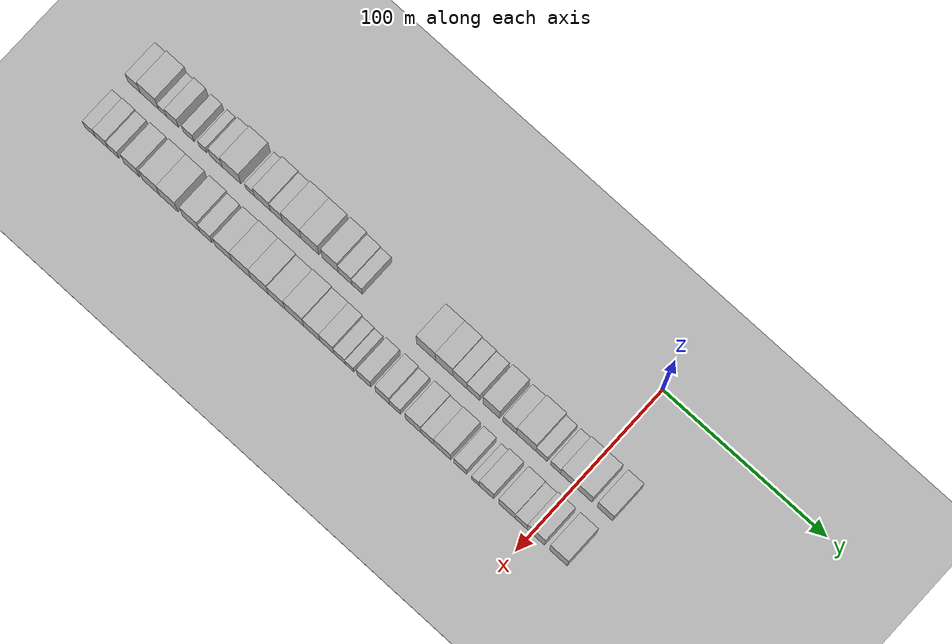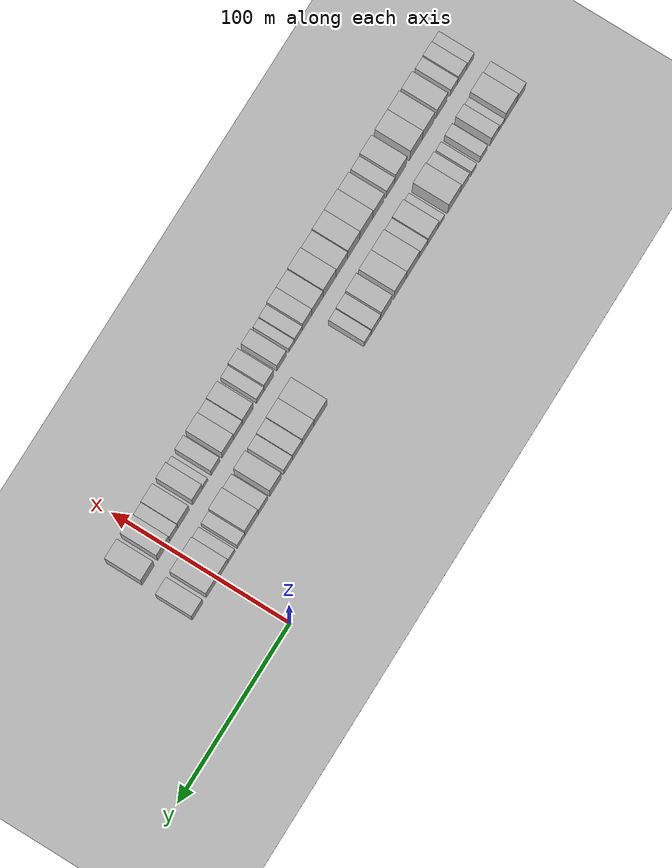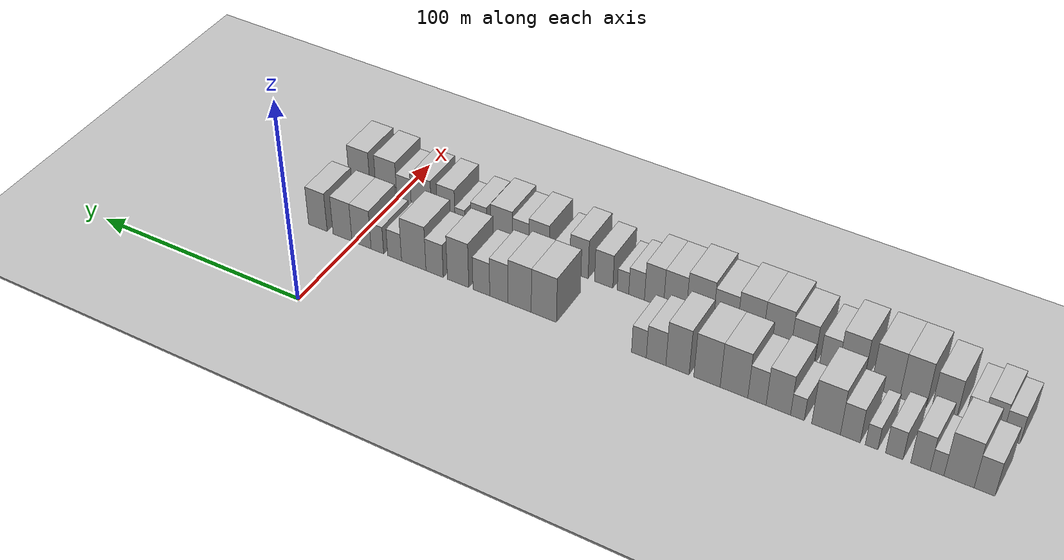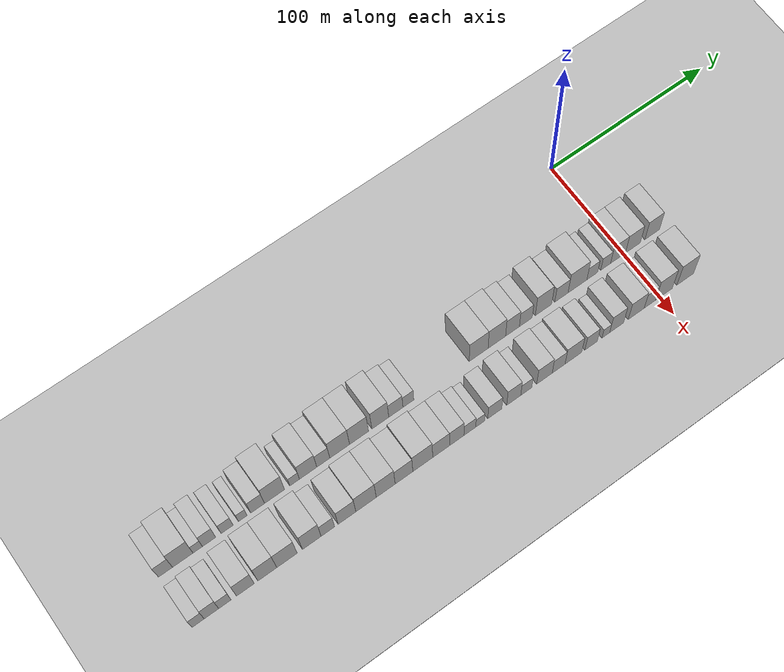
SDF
<sdf version="1.6">
 <world name="default">
  <include><name>ground_plane_1</name><uri>model://HANNAS_ground_plane</uri></include>
  <include>
   <name>ground_plane_2</name>
   <uri>model://HANNAS_ground_plane</uri>
   <pose>100 0 0  0 0 0</pose>
  </include>
  <model name="building_1">
   <static>1</static>
   <pose>50.0000 -274.0984 0 0.000000 0.000000 0.000000</pose>
   <link name="link">
    <pose>0 0 9.00 0 0 0</pose>
    <collision name="collision"><geometry><box><size>20.0000 7.8032 18.0000</size></box></geometry></collision>
    <visual name="visual">
     <cast_shadows>0</cast_shadows>
     <geometry><box><size>20.0000 7.8032 18.0000</size></box></geometry>
     <material>
      <script>
       <uri>model://HANNAS_wall/materials/scripts</uri>
       <uri>model://HANNAS_wall/materials/textures</uri>
       <name>vrc/HANNAS_wall</name>
      </script>
     </material>
    </visual>
   </link>
  </model>
  <model name="building_2">
   <static>1</static>
   <pose>50.0000 -264.4991 0 0.000000 0.000000 0.000000</pose>
   <link name="link">
    <pose>0 0 12.00 0 0 0</pose>
    <collision name="collision"><geometry><box><size>20.0000 11.3953 24.0000</size></box></geometry></collision>
    <visual name="visual">
     <cast_shadows>0</cast_shadows>
     <geometry><box><size>20.0000 11.3953 24.0000</size></box></geometry>
     <material>
      <script>
       <uri>model://HANNAS_wall/materials/scripts</uri>
       <uri>model://HANNAS_wall/materials/textures</uri>
       <name>vrc/HANNAS_wall</name>
      </script>
     </material>
    </visual>
   </link>
  </model>
  <model name="building_3">
   <static>1</static>
   <pose>50.0000 -256.1798 0 0.000000 0.000000 0.000000</pose>
   <link name="link">
    <pose>0 0 6.00 0 0 0</pose>
    <collision name="collision"><geometry><box><size>20.0000 5.2434 12.0000</size></box></geometry></collision>
    <visual name="visual">
     <cast_shadows>0</cast_shadows>
     <geometry><box><size>20.0000 5.2434 12.0000</size></box></geometry>
     <material>
      <script>
       <uri>model://HANNAS_wall/materials/scripts</uri>
       <uri>model://HANNAS_wall/materials/textures</uri>
       <name>vrc/HANNAS_wall</name>
      </script>
     </material>
    </visual>
   </link>
  </model>
  <model name="building_4">
   <static>1</static>
   <pose>50.0000 -249.8199 0 0.000000 0.000000 0.000000</pose>
   <link name="link">
    <pose>0 0 9.00 0 0 0</pose>
    <collision name="collision"><geometry><box><size>20.0000 7.4764 18.0000</size></box></geometry></collision>
    <visual name="visual">
     <cast_shadows>0</cast_shadows>
     <geometry><box><size>20.0000 7.4764 18.0000</size></box></geometry>
     <material>
      <script>
       <uri>model://HANNAS_wall/materials/scripts</uri>
       <uri>model://HANNAS_wall/materials/textures</uri>
       <name>vrc/HANNAS_wall</name>
      </script>
     </material>
    </visual>
   </link>
  </model>
  <model name="building_5">
   <static>1</static>
   <pose>50.0000 -239.6976 0 0.000000 0.000000 0.000000</pose>
   <link name="link">
    <pose>0 0 7.50 0 0 0</pose>
    <collision name="collision"><geometry><box><size>20.0000 6.7683 15.0000</size></box></geometry></collision>
    <visual name="visual">
     <cast_shadows>0</cast_shadows>
     <geometry><box><size>20.0000 6.7683 15.0000</size></box></geometry>
     <material>
      <script>
       <uri>model://HANNAS_wall/materials/scripts</uri>
       <uri>model://HANNAS_wall/materials/textures</uri>
       <name>vrc/HANNAS_wall</name>
      </script>
     </material>
    </visual>
   </link>
  </model>
  <model name="building_6">
   <static>1</static>
   <pose>50.0000 -230.8334 0 0.000000 0.000000 0.000000</pose>
   <link name="link">
    <pose>0 0 6.00 0 0 0</pose>
    <collision name="collision"><geometry><box><size>20.0000 4.9600 12.0000</size></box></geometry></collision>
    <visual name="visual">
     <cast_shadows>0</cast_shadows>
     <geometry><box><size>20.0000 4.9600 12.0000</size></box></geometry>
     <material>
      <script>
       <uri>model://HANNAS_wall/materials/scripts</uri>
       <uri>model://HANNAS_wall/materials/textures</uri>
       <name>vrc/HANNAS_wall</name>
      </script>
     </material>
    </visual>
   </link>
  </model>
  <model name="building_7">
   <static>1</static>
   <pose>50.0000 -222.4226 0 0.000000 0.000000 0.000000</pose>
   <link name="link">
    <pose>0 0 9.00 0 0 0</pose>
    <collision name="collision"><geometry><box><size>20.0000 7.8615 18.0000</size></box></geometry></collision>
    <visual name="visual">
     <cast_shadows>0</cast_shadows>
     <geometry><box><size>20.0000 7.8615 18.0000</size></box></geometry>
     <material>
      <script>
       <uri>model://HANNAS_wall/materials/scripts</uri>
       <uri>model://HANNAS_wall/materials/textures</uri>
       <name>vrc/HANNAS_wall</name>
      </script>
     </material>
    </visual>
   </link>
  </model>
  <model name="building_8">
   <static>1</static>
   <pose>50.0000 -212.7386 0 0.000000 0.000000 0.000000</pose>
   <link name="link">
    <pose>0 0 12.00 0 0 0</pose>
    <collision name="collision"><geometry><box><size>20.0000 11.5064 24.0000</size></box></geometry></collision>
    <visual name="visual">
     <cast_shadows>0</cast_shadows>
     <geometry><box><size>20.0000 11.5064 24.0000</size></box></geometry>
     <material>
      <script>
       <uri>model://HANNAS_wall/materials/scripts</uri>
       <uri>model://HANNAS_wall/materials/textures</uri>
       <name>vrc/HANNAS_wall</name>
      </script>
     </material>
    </visual>
   </link>
  </model>
  <model name="building_9">
   <static>1</static>
   <pose>50.0000 -201.2006 0 0.000000 0.000000 0.000000</pose>
   <link name="link">
    <pose>0 0 6.00 0 0 0</pose>
    <collision name="collision"><geometry><box><size>20.0000 5.5696 12.0000</size></box></geometry></collision>
    <visual name="visual">
     <cast_shadows>0</cast_shadows>
     <geometry><box><size>20.0000 5.5696 12.0000</size></box></geometry>
     <material>
      <script>
       <uri>model://HANNAS_wall/materials/scripts</uri>
       <uri>model://HANNAS_wall/materials/textures</uri>
       <name>vrc/HANNAS_wall</name>
      </script>
     </material>
    </visual>
   </link>
  </model>
  <model name="building_10">
   <static>1</static>
   <pose>50.0000 -193.3967 0 0.000000 0.000000 0.000000</pose>
   <link name="link">
    <pose>0 0 10.50 0 0 0</pose>
    <collision name="collision"><geometry><box><size>20.0000 10.0381 21.0000</size></box></geometry></collision>
    <visual name="visual">
     <cast_shadows>0</cast_shadows>
     <geometry><box><size>20.0000 10.0381 21.0000</size></box></geometry>
     <material>
      <script>
       <uri>model://HANNAS_wall/materials/scripts</uri>
       <uri>model://HANNAS_wall/materials/textures</uri>
       <name>vrc/HANNAS_wall</name>
      </script>
     </material>
    </visual>
   </link>
  </model>
  <model name="building_11">
   <static>1</static>
   <pose>50.0000 -184.5823 0 0.000000 0.000000 0.000000</pose>
   <link name="link">
    <pose>0 0 9.00 0 0 0</pose>
    <collision name="collision"><geometry><box><size>20.0000 7.5908 18.0000</size></box></geometry></collision>
    <visual name="visual">
     <cast_shadows>0</cast_shadows>
     <geometry><box><size>20.0000 7.5908 18.0000</size></box></geometry>
     <material>
      <script>
       <uri>model://HANNAS_wall/materials/scripts</uri>
       <uri>model://HANNAS_wall/materials/textures</uri>
       <name>vrc/HANNAS_wall</name>
      </script>
     </material>
    </visual>
   </link>
  </model>
  <model name="building_12">
   <static>1</static>
   <pose>50.0000 -175.0051 0 0.000000 0.000000 0.000000</pose>
   <link name="link">
    <pose>0 0 12.00 0 0 0</pose>
    <collision name="collision"><geometry><box><size>20.0000 11.5636 24.0000</size></box></geometry></collision>
    <visual name="visual">
     <cast_shadows>0</cast_shadows>
     <geometry><box><size>20.0000 11.5636 24.0000</size></box></geometry>
     <material>
      <script>
       <uri>model://HANNAS_wall/materials/scripts</uri>
       <uri>model://HANNAS_wall/materials/textures</uri>
       <name>vrc/HANNAS_wall</name>
      </script>
     </material>
    </visual>
   </link>
  </model>
  <model name="building_13">
   <static>1</static>
   <pose>50.0000 -163.6334 0 0.000000 0.000000 0.000000</pose>
   <link name="link">
    <pose>0 0 12.00 0 0 0</pose>
    <collision name="collision"><geometry><box><size>20.0000 11.1797 24.0000</size></box></geometry></collision>
    <visual name="visual">
     <cast_shadows>0</cast_shadows>
     <geometry><box><size>20.0000 11.1797 24.0000</size></box></geometry>
     <material>
      <script>
       <uri>model://HANNAS_wall/materials/scripts</uri>
       <uri>model://HANNAS_wall/materials/textures</uri>
       <name>vrc/HANNAS_wall</name>
      </script>
     </material>
    </visual>
   </link>
  </model>
  <model name="building_14">
   <static>1</static>
   <pose>50.0000 -151.0319 0 0.000000 0.000000 0.000000</pose>
   <link name="link">
    <pose>0 0 12.00 0 0 0</pose>
    <collision name="collision"><geometry><box><size>20.0000 10.0233 24.0000</size></box></geometry></collision>
    <visual name="visual">
     <cast_shadows>0</cast_shadows>
     <geometry><box><size>20.0000 10.0233 24.0000</size></box></geometry>
     <material>
      <script>
       <uri>model://HANNAS_wall/materials/scripts</uri>
       <uri>model://HANNAS_wall/materials/textures</uri>
       <name>vrc/HANNAS_wall</name>
      </script>
     </material>
    </visual>
   </link>
  </model>
  <model name="building_15">
   <static>1</static>
   <pose>50.0000 -141.7876 0 0.000000 0.000000 0.000000</pose>
   <link name="link">
    <pose>0 0 9.00 0 0 0</pose>
    <collision name="collision"><geometry><box><size>20.0000 8.4652 18.0000</size></box></geometry></collision>
    <visual name="visual">
     <cast_shadows>0</cast_shadows>
     <geometry><box><size>20.0000 8.4652 18.0000</size></box></geometry>
     <material>
      <script>
       <uri>model://HANNAS_wall/materials/scripts</uri>
       <uri>model://HANNAS_wall/materials/textures</uri>
       <name>vrc/HANNAS_wall</name>
      </script>
     </material>
    </visual>
   </link>
  </model>
  <model name="building_16">
   <static>1</static>
   <pose>50.0000 -134.3034 0 0.000000 0.000000 0.000000</pose>
   <link name="link">
    <pose>0 0 7.50 0 0 0</pose>
    <collision name="collision"><geometry><box><size>20.0000 6.5032 15.0000</size></box></geometry></collision>
    <visual name="visual">
     <cast_shadows>0</cast_shadows>
     <geometry><box><size>20.0000 6.5032 15.0000</size></box></geometry>
     <material>
      <script>
       <uri>model://HANNAS_wall/materials/scripts</uri>
       <uri>model://HANNAS_wall/materials/textures</uri>
       <name>vrc/HANNAS_wall</name>
      </script>
     </material>
    </visual>
   </link>
  </model>
  <model name="building_17">
   <static>1</static>
   <pose>50.0000 -91.6437 0 0.000000 0.000000 0.000000</pose>
   <link name="link">
    <pose>0 0 12.00 0 0 0</pose>
    <collision name="collision"><geometry><box><size>20.0000 11.6054 24.0000</size></box></geometry></collision>
    <visual name="visual">
     <cast_shadows>0</cast_shadows>
     <geometry><box><size>20.0000 11.6054 24.0000</size></box></geometry>
     <material>
      <script>
       <uri>model://HANNAS_wall/materials/scripts</uri>
       <uri>model://HANNAS_wall/materials/textures</uri>
       <name>vrc/HANNAS_wall</name>
      </script>
     </material>
    </visual>
   </link>
  </model>
  <model name="building_18">
   <static>1</static>
   <pose>50.0000 -80.4419 0 0.000000 0.000000 0.000000</pose>
   <link name="link">
    <pose>0 0 12.00 0 0 0</pose>
    <collision name="collision"><geometry><box><size>20.0000 10.7983 24.0000</size></box></geometry></collision>
    <visual name="visual">
     <cast_shadows>0</cast_shadows>
     <geometry><box><size>20.0000 10.7983 24.0000</size></box></geometry>
     <material>
      <script>
       <uri>model://HANNAS_wall/materials/scripts</uri>
       <uri>model://HANNAS_wall/materials/textures</uri>
       <name>vrc/HANNAS_wall</name>
      </script>
     </material>
    </visual>
   </link>
  </model>
  <model name="building_19">
   <static>1</static>
   <pose>50.0000 -70.7479 0 0.000000 0.000000 0.000000</pose>
   <link name="link">
    <pose>0 0 10.50 0 0 0</pose>
    <collision name="collision"><geometry><box><size>20.0000 8.5898 21.0000</size></box></geometry></collision>
    <visual name="visual">
     <cast_shadows>0</cast_shadows>
     <geometry><box><size>20.0000 8.5898 21.0000</size></box></geometry>
     <material>
      <script>
       <uri>model://HANNAS_wall/materials/scripts</uri>
       <uri>model://HANNAS_wall/materials/textures</uri>
       <name>vrc/HANNAS_wall</name>
      </script>
     </material>
    </visual>
   </link>
  </model>
  <model name="building_20">
   <static>1</static>
   <pose>50.0000 -62.4788 0 0.000000 0.000000 0.000000</pose>
   <link name="link">
    <pose>0 0 9.00 0 0 0</pose>
    <collision name="collision"><geometry><box><size>20.0000 7.9483 18.0000</size></box></geometry></collision>
    <visual name="visual">
     <cast_shadows>0</cast_shadows>
     <geometry><box><size>20.0000 7.9483 18.0000</size></box></geometry>
     <material>
      <script>
       <uri>model://HANNAS_wall/materials/scripts</uri>
       <uri>model://HANNAS_wall/materials/textures</uri>
       <name>vrc/HANNAS_wall</name>
      </script>
     </material>
    </visual>
   </link>
  </model>
  <model name="building_21">
   <static>1</static>
   <pose>50.0000 -51.3808 0 0.000000 0.000000 0.000000</pose>
   <link name="link">
    <pose>0 0 12.00 0 0 0</pose>
    <collision name="collision"><geometry><box><size>20.0000 10.2478 24.0000</size></box></geometry></collision>
    <visual name="visual">
     <cast_shadows>0</cast_shadows>
     <geometry><box><size>20.0000 10.2478 24.0000</size></box></geometry>
     <material>
      <script>
       <uri>model://HANNAS_wall/materials/scripts</uri>
       <uri>model://HANNAS_wall/materials/textures</uri>
       <name>vrc/HANNAS_wall</name>
      </script>
     </material>
    </visual>
   </link>
  </model>
  <model name="building_22">
   <static>1</static>
   <pose>50.0000 -40.0598 0 0.000000 0.000000 0.000000</pose>
   <link name="link">
    <pose>0 0 9.00 0 0 0</pose>
    <collision name="collision"><geometry><box><size>20.0000 8.3943 18.0000</size></box></geometry></collision>
    <visual name="visual">
     <cast_shadows>0</cast_shadows>
     <geometry><box><size>20.0000 8.3943 18.0000</size></box></geometry>
     <material>
      <script>
       <uri>model://HANNAS_wall/materials/scripts</uri>
       <uri>model://HANNAS_wall/materials/textures</uri>
       <name>vrc/HANNAS_wall</name>
      </script>
     </material>
    </visual>
   </link>
  </model>
  <model name="building_23">
   <static>1</static>
   <pose>50.0000 -29.8732 0 0.000000 0.000000 0.000000</pose>
   <link name="link">
    <pose>0 0 12.00 0 0 0</pose>
    <collision name="collision"><geometry><box><size>20.0000 11.9789 24.0000</size></box></geometry></collision>
    <visual name="visual">
     <cast_shadows>0</cast_shadows>
     <geometry><box><size>20.0000 11.9789 24.0000</size></box></geometry>
     <material>
      <script>
       <uri>model://HANNAS_wall/materials/scripts</uri>
       <uri>model://HANNAS_wall/materials/textures</uri>
       <name>vrc/HANNAS_wall</name>
      </script>
     </material>
    </visual>
   </link>
  </model>
  <model name="building_24">
   <static>1</static>
   <pose>50.0000 -20.4483 0 0.000000 0.000000 0.000000</pose>
   <link name="link">
    <pose>0 0 7.50 0 0 0</pose>
    <collision name="collision"><geometry><box><size>20.0000 6.8708 15.0000</size></box></geometry></collision>
    <visual name="visual">
     <cast_shadows>0</cast_shadows>
     <geometry><box><size>20.0000 6.8708 15.0000</size></box></geometry>
     <material>
      <script>
       <uri>model://HANNAS_wall/materials/scripts</uri>
       <uri>model://HANNAS_wall/materials/textures</uri>
       <name>vrc/HANNAS_wall</name>
      </script>
     </material>
    </visual>
   </link>
  </model>
  <model name="building_25">
   <static>1</static>
   <pose>50.0000 -11.8697 0 0.000000 0.000000 0.000000</pose>
   <link name="link">
    <pose>0 0 7.50 0 0 0</pose>
    <collision name="collision"><geometry><box><size>20.0000 6.2863 15.0000</size></box></geometry></collision>
    <visual name="visual">
     <cast_shadows>0</cast_shadows>
     <geometry><box><size>20.0000 6.2863 15.0000</size></box></geometry>
     <material>
      <script>
       <uri>model://HANNAS_wall/materials/scripts</uri>
       <uri>model://HANNAS_wall/materials/textures</uri>
       <name>vrc/HANNAS_wall</name>
      </script>
     </material>
    </visual>
   </link>
  </model>
  <model name="building_26">
   <static>1</static>
   <pose>50.0000 -3.9226 0 0.000000 0.000000 0.000000</pose>
   <link name="link">
    <pose>0 0 10.50 0 0 0</pose>
    <collision name="collision"><geometry><box><size>20.0000 9.6079 21.0000</size></box></geometry></collision>
    <visual name="visual">
     <cast_shadows>0</cast_shadows>
     <geometry><box><size>20.0000 9.6079 21.0000</size></box></geometry>
     <material>
      <script>
       <uri>model://HANNAS_wall/materials/scripts</uri>
       <uri>model://HANNAS_wall/materials/textures</uri>
       <name>vrc/HANNAS_wall</name>
      </script>
     </material>
    </visual>
   </link>
  </model>
  <model name="building_27">
   <static>1</static>
   <pose>50.0000 5.7127 0 0.000000 0.000000 0.000000</pose>
   <link name="link">
    <pose>0 0 10.50 0 0 0</pose>
    <collision name="collision"><geometry><box><size>20.0000 9.6628 21.0000</size></box></geometry></collision>
    <visual name="visual">
     <cast_shadows>0</cast_shadows>
     <geometry><box><size>20.0000 9.6628 21.0000</size></box></geometry>
     <material>
      <script>
       <uri>model://HANNAS_wall/materials/scripts</uri>
       <uri>model://HANNAS_wall/materials/textures</uri>
       <name>vrc/HANNAS_wall</name>
      </script>
     </material>
    </visual>
   </link>
  </model>
  <model name="building_28">
   <static>1</static>
   <pose>50.0000 18.3281 0 0.000000 0.000000 0.000000</pose>
   <link name="link">
    <pose>0 0 10.50 0 0 0</pose>
    <collision name="collision"><geometry><box><size>20.0000 9.5679 21.0000</size></box></geometry></collision>
    <visual name="visual">
     <cast_shadows>0</cast_shadows>
     <geometry><box><size>20.0000 9.5679 21.0000</size></box></geometry>
     <material>
      <script>
       <uri>model://HANNAS_wall/materials/scripts</uri>
       <uri>model://HANNAS_wall/materials/textures</uri>
       <name>vrc/HANNAS_wall</name>
      </script>
     </material>
    </visual>
   </link>
  </model>
  <model name="building_58">
   <static>1</static>
   <pose>79.0000 -274.6363 0 0.000000 0.000000 0.000000</pose>
   <link name="link">
    <pose>0 0 7.50 0 0 0</pose>
    <collision name="collision"><geometry><box><size>20.0000 6.7274 15.0000</size></box></geometry></collision>
    <visual name="visual">
     <cast_shadows>0</cast_shadows>
     <geometry><box><size>20.0000 6.7274 15.0000</size></box></geometry>
     <material>
      <script>
       <uri>model://HANNAS_wall/materials/scripts</uri>
       <uri>model://HANNAS_wall/materials/textures</uri>
       <name>vrc/HANNAS_wall</name>
      </script>
     </material>
    </visual>
   </link>
  </model>
  <model name="building_59">
   <static>1</static>
   <pose>79.0000 -267.2774 0 0.000000 0.000000 0.000000</pose>
   <link name="link">
    <pose>0 0 9.00 0 0 0</pose>
    <collision name="collision"><geometry><box><size>20.0000 7.9905 18.0000</size></box></geometry></collision>
    <visual name="visual">
     <cast_shadows>0</cast_shadows>
     <geometry><box><size>20.0000 7.9905 18.0000</size></box></geometry>
     <material>
      <script>
       <uri>model://HANNAS_wall/materials/scripts</uri>
       <uri>model://HANNAS_wall/materials/textures</uri>
       <name>vrc/HANNAS_wall</name>
      </script>
     </material>
    </visual>
   </link>
  </model>
  <model name="building_60">
   <static>1</static>
   <pose>79.0000 -259.8682 0 0.000000 0.000000 0.000000</pose>
   <link name="link">
    <pose>0 0 7.50 0 0 0</pose>
    <collision name="collision"><geometry><box><size>20.0000 6.8278 15.0000</size></box></geometry></collision>
    <visual name="visual">
     <cast_shadows>0</cast_shadows>
     <geometry><box><size>20.0000 6.8278 15.0000</size></box></geometry>
     <material>
      <script>
       <uri>model://HANNAS_wall/materials/scripts</uri>
       <uri>model://HANNAS_wall/materials/textures</uri>
       <name>vrc/HANNAS_wall</name>
      </script>
     </material>
    </visual>
   </link>
  </model>
  <model name="building_61">
   <static>1</static>
   <pose>79.0000 -248.5014 0 0.000000 0.000000 0.000000</pose>
   <link name="link">
    <pose>0 0 10.50 0 0 0</pose>
    <collision name="collision"><geometry><box><size>20.0000 9.9060 21.0000</size></box></geometry></collision>
    <visual name="visual">
     <cast_shadows>0</cast_shadows>
     <geometry><box><size>20.0000 9.9060 21.0000</size></box></geometry>
     <material>
      <script>
       <uri>model://HANNAS_wall/materials/scripts</uri>
       <uri>model://HANNAS_wall/materials/textures</uri>
       <name>vrc/HANNAS_wall</name>
      </script>
     </material>
    </visual>
   </link>
  </model>
  <model name="building_62">
   <static>1</static>
   <pose>79.0000 -236.2479 0 0.000000 0.000000 0.000000</pose>
   <link name="link">
    <pose>0 0 12.00 0 0 0</pose>
    <collision name="collision"><geometry><box><size>20.0000 10.6009 24.0000</size></box></geometry></collision>
    <visual name="visual">
     <cast_shadows>0</cast_shadows>
     <geometry><box><size>20.0000 10.6009 24.0000</size></box></geometry>
     <material>
      <script>
       <uri>model://HANNAS_wall/materials/scripts</uri>
       <uri>model://HANNAS_wall/materials/textures</uri>
       <name>vrc/HANNAS_wall</name>
      </script>
     </material>
    </visual>
   </link>
  </model>
  <model name="building_63">
   <static>1</static>
   <pose>79.0000 -225.1580 0 0.000000 0.000000 0.000000</pose>
   <link name="link">
    <pose>0 0 12.00 0 0 0</pose>
    <collision name="collision"><geometry><box><size>20.0000 11.5790 24.0000</size></box></geometry></collision>
    <visual name="visual">
     <cast_shadows>0</cast_shadows>
     <geometry><box><size>20.0000 11.5790 24.0000</size></box></geometry>
     <material>
      <script>
       <uri>model://HANNAS_wall/materials/scripts</uri>
       <uri>model://HANNAS_wall/materials/textures</uri>
       <name>vrc/HANNAS_wall</name>
      </script>
     </material>
    </visual>
   </link>
  </model>
  <model name="building_64">
   <static>1</static>
   <pose>79.0000 -211.0522 0 0.000000 0.000000 0.000000</pose>
   <link name="link">
    <pose>0 0 12.00 0 0 0</pose>
    <collision name="collision"><geometry><box><size>20.0000 10.6325 24.0000</size></box></geometry></collision>
    <visual name="visual">
     <cast_shadows>0</cast_shadows>
     <geometry><box><size>20.0000 10.6325 24.0000</size></box></geometry>
     <material>
      <script>
       <uri>model://HANNAS_wall/materials/scripts</uri>
       <uri>model://HANNAS_wall/materials/textures</uri>
       <name>vrc/HANNAS_wall</name>
      </script>
     </material>
    </visual>
   </link>
  </model>
  <model name="building_65">
   <static>1</static>
   <pose>79.0000 -201.8624 0 0.000000 0.000000 0.000000</pose>
   <link name="link">
    <pose>0 0 9.00 0 0 0</pose>
    <collision name="collision"><geometry><box><size>20.0000 7.7469 18.0000</size></box></geometry></collision>
    <visual name="visual">
     <cast_shadows>0</cast_shadows>
     <geometry><box><size>20.0000 7.7469 18.0000</size></box></geometry>
     <material>
      <script>
       <uri>model://HANNAS_wall/materials/scripts</uri>
       <uri>model://HANNAS_wall/materials/textures</uri>
       <name>vrc/HANNAS_wall</name>
      </script>
     </material>
    </visual>
   </link>
  </model>
  <model name="building_66">
   <static>1</static>
   <pose>79.0000 -190.8529 0 0.000000 0.000000 0.000000</pose>
   <link name="link">
    <pose>0 0 10.50 0 0 0</pose>
    <collision name="collision"><geometry><box><size>20.0000 10.2721 21.0000</size></box></geometry></collision>
    <visual name="visual">
     <cast_shadows>0</cast_shadows>
     <geometry><box><size>20.0000 10.2721 21.0000</size></box></geometry>
     <material>
      <script>
       <uri>model://HANNAS_wall/materials/scripts</uri>
       <uri>model://HANNAS_wall/materials/textures</uri>
       <name>vrc/HANNAS_wall</name>
      </script>
     </material>
    </visual>
   </link>
  </model>
  <model name="building_67">
   <static>1</static>
   <pose>79.0000 -179.8045 0 0.000000 0.000000 0.000000</pose>
   <link name="link">
    <pose>0 0 12.00 0 0 0</pose>
    <collision name="collision"><geometry><box><size>20.0000 11.8248 24.0000</size></box></geometry></collision>
    <visual name="visual">
     <cast_shadows>0</cast_shadows>
     <geometry><box><size>20.0000 11.8248 24.0000</size></box></geometry>
     <material>
      <script>
       <uri>model://HANNAS_wall/materials/scripts</uri>
       <uri>model://HANNAS_wall/materials/textures</uri>
       <name>vrc/HANNAS_wall</name>
      </script>
     </material>
    </visual>
   </link>
  </model>
  <model name="building_68">
   <static>1</static>
   <pose>79.0000 -168.3665 0 0.000000 0.000000 0.000000</pose>
   <link name="link">
    <pose>0 0 12.00 0 0 0</pose>
    <collision name="collision"><geometry><box><size>20.0000 11.0511 24.0000</size></box></geometry></collision>
    <visual name="visual">
     <cast_shadows>0</cast_shadows>
     <geometry><box><size>20.0000 11.0511 24.0000</size></box></geometry>
     <material>
      <script>
       <uri>model://HANNAS_wall/materials/scripts</uri>
       <uri>model://HANNAS_wall/materials/textures</uri>
       <name>vrc/HANNAS_wall</name>
      </script>
     </material>
    </visual>
   </link>
  </model>
  <model name="building_69">
   <static>1</static>
   <pose>79.0000 -157.6534 0 0.000000 0.000000 0.000000</pose>
   <link name="link">
    <pose>0 0 10.50 0 0 0</pose>
    <collision name="collision"><geometry><box><size>20.0000 10.3751 21.0000</size></box></geometry></collision>
    <visual name="visual">
     <cast_shadows>0</cast_shadows>
     <geometry><box><size>20.0000 10.3751 21.0000</size></box></geometry>
     <material>
      <script>
       <uri>model://HANNAS_wall/materials/scripts</uri>
       <uri>model://HANNAS_wall/materials/textures</uri>
       <name>vrc/HANNAS_wall</name>
      </script>
     </material>
    </visual>
   </link>
  </model>
  <model name="building_70">
   <static>1</static>
   <pose>79.0000 -146.5816 0 0.000000 0.000000 0.000000</pose>
   <link name="link">
    <pose>0 0 12.00 0 0 0</pose>
    <collision name="collision"><geometry><box><size>20.0000 11.7685 24.0000</size></box></geometry></collision>
    <visual name="visual">
     <cast_shadows>0</cast_shadows>
     <geometry><box><size>20.0000 11.7685 24.0000</size></box></geometry>
     <material>
      <script>
       <uri>model://HANNAS_wall/materials/scripts</uri>
       <uri>model://HANNAS_wall/materials/textures</uri>
       <name>vrc/HANNAS_wall</name>
      </script>
     </material>
    </visual>
   </link>
  </model>
  <model name="building_71">
   <static>1</static>
   <pose>79.0000 -135.6653 0 0.000000 0.000000 0.000000</pose>
   <link name="link">
    <pose>0 0 10.50 0 0 0</pose>
    <collision name="collision"><geometry><box><size>20.0000 10.0643 21.0000</size></box></geometry></collision>
    <visual name="visual">
     <cast_shadows>0</cast_shadows>
     <geometry><box><size>20.0000 10.0643 21.0000</size></box></geometry>
     <material>
      <script>
       <uri>model://HANNAS_wall/materials/scripts</uri>
       <uri>model://HANNAS_wall/materials/textures</uri>
       <name>vrc/HANNAS_wall</name>
      </script>
     </material>
    </visual>
   </link>
  </model>
  <model name="building_72">
   <static>1</static>
   <pose>79.0000 -126.3480 0 0.000000 0.000000 0.000000</pose>
   <link name="link">
    <pose>0 0 10.50 0 0 0</pose>
    <collision name="collision"><geometry><box><size>20.0000 8.5702 21.0000</size></box></geometry></collision>
    <visual name="visual">
     <cast_shadows>0</cast_shadows>
     <geometry><box><size>20.0000 8.5702 21.0000</size></box></geometry>
     <material>
      <script>
       <uri>model://HANNAS_wall/materials/scripts</uri>
       <uri>model://HANNAS_wall/materials/textures</uri>
       <name>vrc/HANNAS_wall</name>
      </script>
     </material>
    </visual>
   </link>
  </model>
  <model name="building_73">
   <static>1</static>
   <pose>79.0000 -118.4875 0 0.000000 0.000000 0.000000</pose>
   <link name="link">
    <pose>0 0 7.50 0 0 0</pose>
    <collision name="collision"><geometry><box><size>20.0000 7.1509 15.0000</size></box></geometry></collision>
    <visual name="visual">
     <cast_shadows>0</cast_shadows>
     <geometry><box><size>20.0000 7.1509 15.0000</size></box></geometry>
     <material>
      <script>
       <uri>model://HANNAS_wall/materials/scripts</uri>
       <uri>model://HANNAS_wall/materials/textures</uri>
       <name>vrc/HANNAS_wall</name>
      </script>
     </material>
    </visual>
   </link>
  </model>
  <model name="building_74">
   <static>1</static>
   <pose>79.0000 -112.2711 0 0.000000 0.000000 0.000000</pose>
   <link name="link">
    <pose>0 0 6.00 0 0 0</pose>
    <collision name="collision"><geometry><box><size>20.0000 5.2819 12.0000</size></box></geometry></collision>
    <visual name="visual">
     <cast_shadows>0</cast_shadows>
     <geometry><box><size>20.0000 5.2819 12.0000</size></box></geometry>
     <material>
      <script>
       <uri>model://HANNAS_wall/materials/scripts</uri>
       <uri>model://HANNAS_wall/materials/textures</uri>
       <name>vrc/HANNAS_wall</name>
      </script>
     </material>
    </visual>
   </link>
  </model>
  <model name="building_75">
   <static>1</static>
   <pose>79.0000 -103.4100 0 0.000000 0.000000 0.000000</pose>
   <link name="link">
    <pose>0 0 9.00 0 0 0</pose>
    <collision name="collision"><geometry><box><size>20.0000 8.4403 18.0000</size></box></geometry></collision>
    <visual name="visual">
     <cast_shadows>0</cast_shadows>
     <geometry><box><size>20.0000 8.4403 18.0000</size></box></geometry>
     <material>
      <script>
       <uri>model://HANNAS_wall/materials/scripts</uri>
       <uri>model://HANNAS_wall/materials/textures</uri>
       <name>vrc/HANNAS_wall</name>
      </script>
     </material>
    </visual>
   </link>
  </model>
  <model name="building_76">
   <static>1</static>
   <pose>79.0000 -91.8898 0 0.000000 0.000000 0.000000</pose>
   <link name="link">
    <pose>0 0 10.50 0 0 0</pose>
    <collision name="collision"><geometry><box><size>20.0000 8.6001 21.0000</size></box></geometry></collision>
    <visual name="visual">
     <cast_shadows>0</cast_shadows>
     <geometry><box><size>20.0000 8.6001 21.0000</size></box></geometry>
     <material>
      <script>
       <uri>model://HANNAS_wall/materials/scripts</uri>
       <uri>model://HANNAS_wall/materials/textures</uri>
       <name>vrc/HANNAS_wall</name>
      </script>
     </material>
    </visual>
   </link>
  </model>
  <model name="building_77">
   <static>1</static>
   <pose>79.0000 -84.2057 0 0.000000 0.000000 0.000000</pose>
   <link name="link">
    <pose>0 0 7.50 0 0 0</pose>
    <collision name="collision"><geometry><box><size>20.0000 6.7681 15.0000</size></box></geometry></collision>
    <visual name="visual">
     <cast_shadows>0</cast_shadows>
     <geometry><box><size>20.0000 6.7681 15.0000</size></box></geometry>
     <material>
      <script>
       <uri>model://HANNAS_wall/materials/scripts</uri>
       <uri>model://HANNAS_wall/materials/textures</uri>
       <name>vrc/HANNAS_wall</name>
      </script>
     </material>
    </visual>
   </link>
  </model>
  <model name="building_78">
   <static>1</static>
   <pose>79.0000 -73.0280 0 0.000000 0.000000 0.000000</pose>
   <link name="link">
    <pose>0 0 10.50 0 0 0</pose>
    <collision name="collision"><geometry><box><size>20.0000 9.5872 21.0000</size></box></geometry></collision>
    <visual name="visual">
     <cast_shadows>0</cast_shadows>
     <geometry><box><size>20.0000 9.5872 21.0000</size></box></geometry>
     <material>
      <script>
       <uri>model://HANNAS_wall/materials/scripts</uri>
       <uri>model://HANNAS_wall/materials/textures</uri>
       <name>vrc/HANNAS_wall</name>
      </script>
     </material>
    </visual>
   </link>
  </model>
  <model name="building_79">
   <static>1</static>
   <pose>79.0000 -64.2512 0 0.000000 0.000000 0.000000</pose>
   <link name="link">
    <pose>0 0 9.00 0 0 0</pose>
    <collision name="collision"><geometry><box><size>20.0000 7.9664 18.0000</size></box></geometry></collision>
    <visual name="visual">
     <cast_shadows>0</cast_shadows>
     <geometry><box><size>20.0000 7.9664 18.0000</size></box></geometry>
     <material>
      <script>
       <uri>model://HANNAS_wall/materials/scripts</uri>
       <uri>model://HANNAS_wall/materials/textures</uri>
       <name>vrc/HANNAS_wall</name>
      </script>
     </material>
    </visual>
   </link>
  </model>
  <model name="building_80">
   <static>1</static>
   <pose>79.0000 -55.0714 0 0.000000 0.000000 0.000000</pose>
   <link name="link">
    <pose>0 0 10.50 0 0 0</pose>
    <collision name="collision"><geometry><box><size>20.0000 10.3932 21.0000</size></box></geometry></collision>
    <visual name="visual">
     <cast_shadows>0</cast_shadows>
     <geometry><box><size>20.0000 10.3932 21.0000</size></box></geometry>
     <material>
      <script>
       <uri>model://HANNAS_wall/materials/scripts</uri>
       <uri>model://HANNAS_wall/materials/textures</uri>
       <name>vrc/HANNAS_wall</name>
      </script>
     </material>
    </visual>
   </link>
  </model>
  <model name="building_81">
   <static>1</static>
   <pose>79.0000 -43.9739 0 0.000000 0.000000 0.000000</pose>
   <link name="link">
    <pose>0 0 9.00 0 0 0</pose>
    <collision name="collision"><geometry><box><size>20.0000 7.8018 18.0000</size></box></geometry></collision>
    <visual name="visual">
     <cast_shadows>0</cast_shadows>
     <geometry><box><size>20.0000 7.8018 18.0000</size></box></geometry>
     <material>
      <script>
       <uri>model://HANNAS_wall/materials/scripts</uri>
       <uri>model://HANNAS_wall/materials/textures</uri>
       <name>vrc/HANNAS_wall</name>
      </script>
     </material>
    </visual>
   </link>
  </model>
  <model name="building_82">
   <static>1</static>
   <pose>79.0000 -34.6672 0 0.000000 0.000000 0.000000</pose>
   <link name="link">
    <pose>0 0 6.00 0 0 0</pose>
    <collision name="collision"><geometry><box><size>20.0000 4.8117 12.0000</size></box></geometry></collision>
    <visual name="visual">
     <cast_shadows>0</cast_shadows>
     <geometry><box><size>20.0000 4.8117 12.0000</size></box></geometry>
     <material>
      <script>
       <uri>model://HANNAS_wall/materials/scripts</uri>
       <uri>model://HANNAS_wall/materials/textures</uri>
       <name>vrc/HANNAS_wall</name>
      </script>
     </material>
    </visual>
   </link>
  </model>
  <model name="building_83">
   <static>1</static>
   <pose>79.0000 -27.8576 0 0.000000 0.000000 0.000000</pose>
   <link name="link">
    <pose>0 0 10.50 0 0 0</pose>
    <collision name="collision"><geometry><box><size>20.0000 8.8075 21.0000</size></box></geometry></collision>
    <visual name="visual">
     <cast_shadows>0</cast_shadows>
     <geometry><box><size>20.0000 8.8075 21.0000</size></box></geometry>
     <material>
      <script>
       <uri>model://HANNAS_wall/materials/scripts</uri>
       <uri>model://HANNAS_wall/materials/textures</uri>
       <name>vrc/HANNAS_wall</name>
      </script>
     </material>
    </visual>
   </link>
  </model>
  <model name="building_84">
   <static>1</static>
   <pose>79.0000 -15.3562 0 0.000000 0.000000 0.000000</pose>
   <link name="link">
    <pose>0 0 10.50 0 0 0</pose>
    <collision name="collision"><geometry><box><size>20.0000 10.1953 21.0000</size></box></geometry></collision>
    <visual name="visual">
     <cast_shadows>0</cast_shadows>
     <geometry><box><size>20.0000 10.1953 21.0000</size></box></geometry>
     <material>
      <script>
       <uri>model://HANNAS_wall/materials/scripts</uri>
       <uri>model://HANNAS_wall/materials/textures</uri>
       <name>vrc/HANNAS_wall</name>
      </script>
     </material>
    </visual>
   </link>
  </model>
  <model name="building_85">
   <static>1</static>
   <pose>79.0000 -6.6185 0 0.000000 0.000000 0.000000</pose>
   <link name="link">
    <pose>0 0 9.00 0 0 0</pose>
    <collision name="collision"><geometry><box><size>20.0000 7.2800 18.0000</size></box></geometry></collision>
    <visual name="visual">
     <cast_shadows>0</cast_shadows>
     <geometry><box><size>20.0000 7.2800 18.0000</size></box></geometry>
     <material>
      <script>
       <uri>model://HANNAS_wall/materials/scripts</uri>
       <uri>model://HANNAS_wall/materials/textures</uri>
       <name>vrc/HANNAS_wall</name>
      </script>
     </material>
    </visual>
   </link>
  </model>
  <model name="building_86">
   <static>1</static>
   <pose>79.0000 2.3873 0 0.000000 0.000000 0.000000</pose>
   <link name="link">
    <pose>0 0 12.00 0 0 0</pose>
    <collision name="collision"><geometry><box><size>20.0000 10.7316 24.0000</size></box></geometry></collision>
    <visual name="visual">
     <cast_shadows>0</cast_shadows>
     <geometry><box><size>20.0000 10.7316 24.0000</size></box></geometry>
     <material>
      <script>
       <uri>model://HANNAS_wall/materials/scripts</uri>
       <uri>model://HANNAS_wall/materials/textures</uri>
       <name>vrc/HANNAS_wall</name>
      </script>
     </material>
    </visual>
   </link>
  </model>
  <model name="building_87">
   <static>1</static>
   <pose>79.0000 16.1922 0 0.000000 0.000000 0.000000</pose>
   <link name="link">
    <pose>0 0 12.00 0 0 0</pose>
    <collision name="collision"><geometry><box><size>20.0000 10.8783 24.0000</size></box></geometry></collision>
    <visual name="visual">
     <cast_shadows>0</cast_shadows>
     <geometry><box><size>20.0000 10.8783 24.0000</size></box></geometry>
     <material>
      <script>
       <uri>model://HANNAS_wall/materials/scripts</uri>
       <uri>model://HANNAS_wall/materials/textures</uri>
       <name>vrc/HANNAS_wall</name>
      </script>
     </material>
    </visual>
   </link>
  </model>
 </world>
</sdf>
